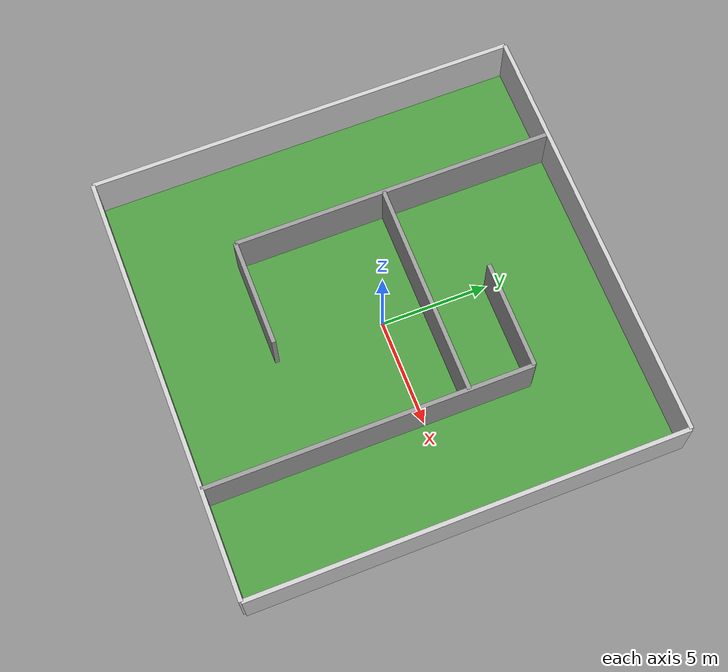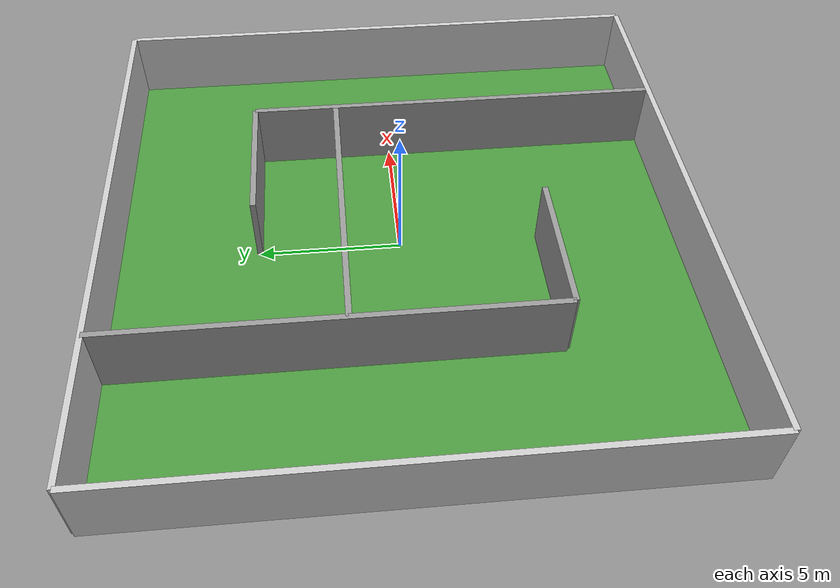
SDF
<?xml version="1.0" ?>
<sdf version="1.6">
  <world name="maze_world">
    <model name="maze">
      <static>true</static>

      <!-- Floor -->
      <link name="floor">
        <collision name="floor_collision">
          <geometry>
            <plane>
              <normal>0 0 1</normal>
              <size>20 20</size>
            </plane>
          </geometry>
          <surface>
            <contact>
              <collide_bitmask>0x01</collide_bitmask>
            </contact>
          </surface>
        </collision>
        <visual name="floor_visual">
          <geometry>
            <plane>
              <normal>0 0 1</normal>
              <size>20 20</size>
            </plane>
          </geometry>
          <material>
            <script>
              <uri>file://media/materials/scripts/gazebo.material</uri>
              <name>Gazebo/Grass</name>
            </script>
          </material>
        </visual>
      </link>

      <!-- Walls -->
      <link name="walls">
        <!-- Outer Walls -->
        <collision name="north_wall_collision">
          <geometry>
            <box>
              <size>20 0.2 2.5</size>
            </box>
          </geometry>
          <pose>0 10 1.25 0 0 0</pose>
        </collision>
        <collision name="south_wall_collision">
          <geometry>
            <box>
              <size>20 0.2 2.5</size>
            </box>
          </geometry>
          <pose>0 -10 1.25 0 0 0</pose>
        </collision>
        <collision name="east_wall_collision">
          <geometry>
            <box>
              <size>0.2 20 2.5</size>
            </box>
          </geometry>
          <pose>10 0 1.25 0 0 0</pose>
        </collision>
        <collision name="west_wall_collision">
          <geometry>
            <box>
              <size>0.2 20 2.5</size>
            </box>
          </geometry>
          <pose>-10 0 1.25 0 0 0</pose>
        </collision>

        <!-- Internal Maze Walls -->
        <collision name="maze_wall1_collision">
          <geometry>
            <box>
              <size>0.2 15 2.5</size>
            </box>
          </geometry>
          <pose>-5 2.5 1.25 0 0 0</pose>
        </collision>
        <collision name="maze_wall2_collision">
          <geometry>
            <box>
              <size>0.2 15 2.5</size>
            </box>
          </geometry>
          <pose>5 -2.5 1.25 0 0 0</pose>
        </collision>
        <!-- Relocated Wall -->
        <collision name="maze_wall3_collision">
          <geometry>
            <box>
              <size>10 0.2 2.5</size>
            </box>
          </geometry>
          <pose>0 2 1.25 0 0 0</pose>
        </collision>
        <collision name="maze_wall4_collision">
          <geometry>
            <box>
              <size>5 0.2 2.5</size>
            </box>
          </geometry>
          <pose>2.5 5 1.25 0 0 0</pose>
        </collision>
        <collision name="maze_wall5_collision">
          <geometry>
            <box>
              <size>5 0.2 2.5</size>
            </box>
          </geometry>
          <pose>-2.5 -5 1.25 0 0 0</pose>
        </collision>

        <!-- Visuals for Walls -->
        <!-- Outer Walls Visuals -->
        <visual name="north_wall_visual">
          <geometry>
            <box>
              <size>20 0.2 2.5</size>
            </box>
          </geometry>
          <pose>0 10 1.25 0 0 0</pose>
          <material>
            <ambient>0.8 0.8 0.8 1</ambient>
          </material>
        </visual>
        <visual name="south_wall_visual">
          <geometry>
            <box>
              <size>20 0.2 2.5</size>
            </box>
          </geometry>
          <pose>0 -10 1.25 0 0 0</pose>
          <material>
            <ambient>0.8 0.8 0.8 1</ambient>
          </material>
        </visual>
        <visual name="east_wall_visual">
          <geometry>
            <box>
              <size>0.2 20 2.5</size>
            </box>
          </geometry>
          <pose>10 0 1.25 0 0 0</pose>
          <material>
            <ambient>0.8 0.8 0.8 1</ambient>
          </material>
        </visual>
        <visual name="west_wall_visual">
          <geometry>
            <box>
              <size>0.2 20 2.5</size>
            </box>
          </geometry>
          <pose>-10 0 1.25 0 0 0</pose>
          <material>
            <ambient>0.8 0.8 0.8 1</ambient>
          </material>
        </visual>

        <!-- Internal Maze Walls Visuals -->
        <visual name="maze_wall1_visual">
          <geometry>
            <box>
              <size>0.2 15 2.5</size>
            </box>
          </geometry>
          <pose>-5 2.5 1.25 0 0 0</pose>
          <material>
            <ambient>0.6 0.6 0.6 1</ambient>
          </material>
        </visual>
        <visual name="maze_wall2_visual">
          <geometry>
            <box>
              <size>0.2 15 2.5</size>
            </box>
          </geometry>
          <pose>5 -2.5 1.25 0 0 0</pose>
          <material>
            <ambient>0.6 0.6 0.6 1</ambient>
          </material>
        </visual>
        <!-- Relocated Wall Visual -->
        <visual name="maze_wall3_visual">
          <geometry>
            <box>
              <size>10 0.2 2.5</size>
            </box>
          </geometry>
          <pose>0 2 1.25 0 0 0</pose>
          <material>
            <ambient>0.6 0.6 0.6 1</ambient>
          </material>
        </visual>
        <visual name="maze_wall4_visual">
          <geometry>
            <box>
              <size>5 0.2 2.5</size>
            </box>
          </geometry>
          <pose>2.5 5 1.25 0 0 0</pose>
          <material>
            <ambient>0.6 0.6 0.6 1</ambient>
          </material>
        </visual>
        <visual name="maze_wall5_visual">
          <geometry>
            <box>
              <size>5 0.2 2.5</size>
            </box>
          </geometry>
          <pose>-2.5 -5 1.25 0 0 0</pose>
          <material>
            <ambient>0.6 0.6 0.6 1</ambient>
          </material>
        </visual>
      </link>
    </model>
  </world>
</sdf>
